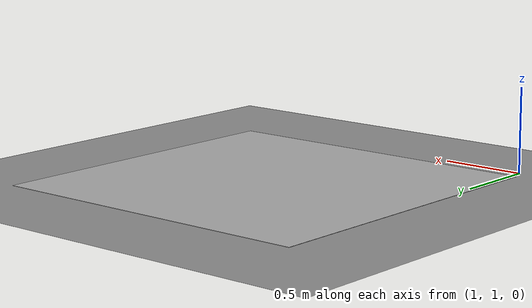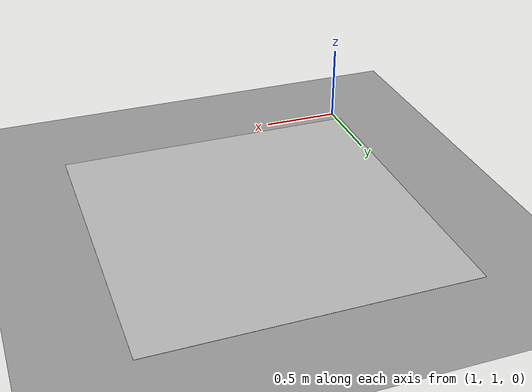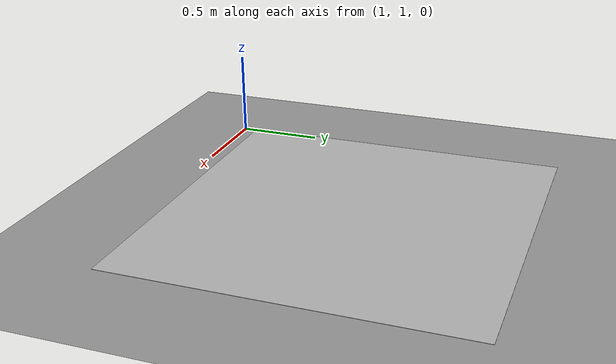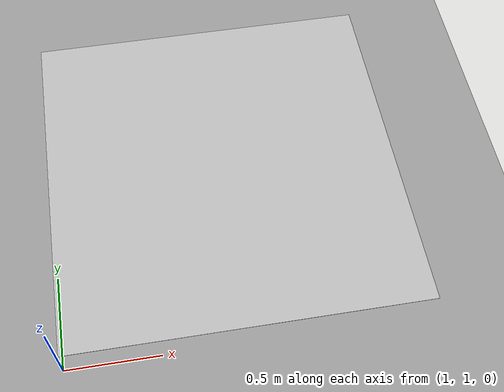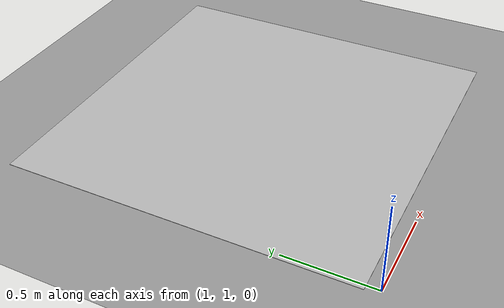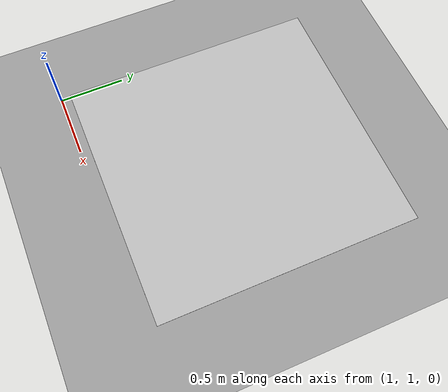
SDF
<sdf version="1.7">
 <world name="default">
  <plugin name="ros_interface_plugin" filename="librotors_gazebo_ros_interface_plugin.so"/>
  <light name="sun" type="directional">
   <pose>0 0 10 0 -0 0</pose>
   <diffuse>0.8 0.8 0.8 1</diffuse>
   <specular>0.2 0.2 0.2 1</specular>
   <attenuation>
    <range>1000</range>
    <constant>0.9</constant>
    <linear>0.01</linear>
    <quadratic>0.001</quadratic>
   </attenuation>
   <direction>-0.5 0.1 -0.9</direction>
   <spot><inner_angle>0</inner_angle><outer_angle>0</outer_angle><falloff>0</falloff></spot>
  </light>
  <model name="aruco">
   <static>1</static>
   <link name="link">
    <collision name="collision">
     <geometry><plane><normal>0 0 1</normal><size>100 100</size></plane></geometry>
     <surface>
      <contact><collide_bitmask>65535</collide_bitmask></contact>
      <friction><ode><mu>100</mu><mu2>50</mu2></ode></friction>
     </surface>
    </collision>
    <visual name="visual">
     <cast_shadows>0</cast_shadows>
     <geometry><plane><normal>0 0 1</normal><size>100 100</size></plane></geometry>
     <material>
      <script><uri>file://media/materials/scripts/gazebo.material</uri><name>Gazebo/Grey</name></script>
     </material>
    </visual>
   </link>
  </model>
  <gravity>0 0 -9.8</gravity>
  <magnetic_field>6e-06 2.3e-05 -4.2e-05</magnetic_field>
  <atmosphere type="adiabatic"/>
  <physics type="ode">
   <max_step_size>0.001</max_step_size>
   <real_time_factor>1</real_time_factor>
   <real_time_update_rate>1000</real_time_update_rate>
  </physics>
  <scene><ambient>0.4 0.4 0.4 1</ambient><background>0.7 0.7 0.7 1</background><shadows>1</shadows></scene>
  <spherical_coordinates>
   <surface_model>EARTH_WGS84</surface_model>
   <latitude_deg>0</latitude_deg>
   <longitude_deg>0</longitude_deg>
   <elevation>0</elevation>
   <heading_deg>0</heading_deg>
  </spherical_coordinates>
  <model name="ArUco">
   <static>1</static>
   <link name="link">
    <collision name="collision">
     <geometry><plane><normal>0 0 1</normal><size>2 2</size></plane></geometry>
     <surface><friction><ode><mu>100</mu><mu2>50</mu2></ode></friction></surface>
    </collision>
    <visual name="visual">
     <cast_shadows>0</cast_shadows>
     <geometry><plane><normal>0 0 1</normal><size>2 2</size></plane></geometry>
     <material>
      <script>
       <uri>model://ArUco/materials/scripts</uri>
       <uri>model://ArUco/materials/textures</uri>
       <name>ArUco/Image</name>
      </script>
     </material>
    </visual>
   </link>
   <pose>1.97419 2.07572 0 0 -0 0</pose>
  </model>
 </world>
</sdf>
